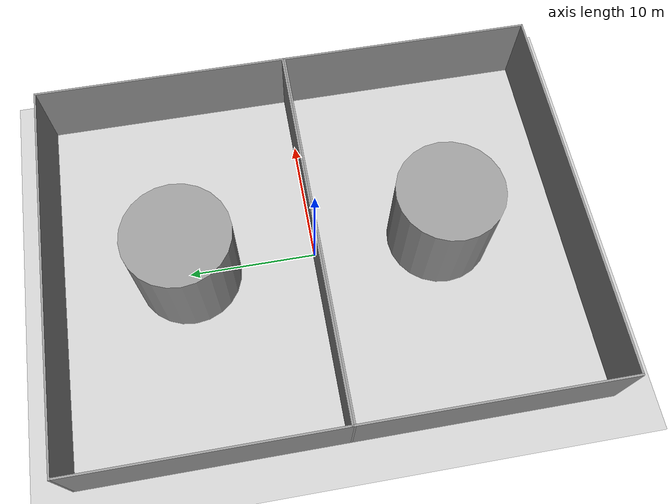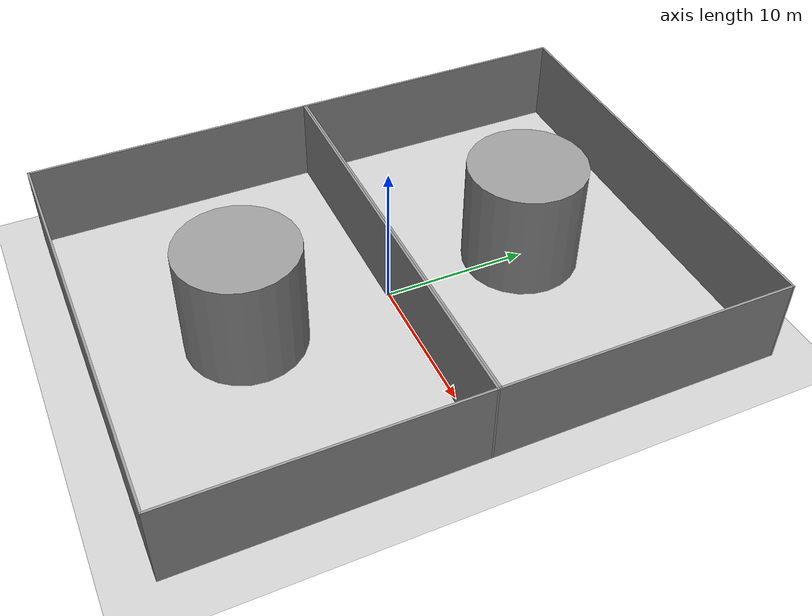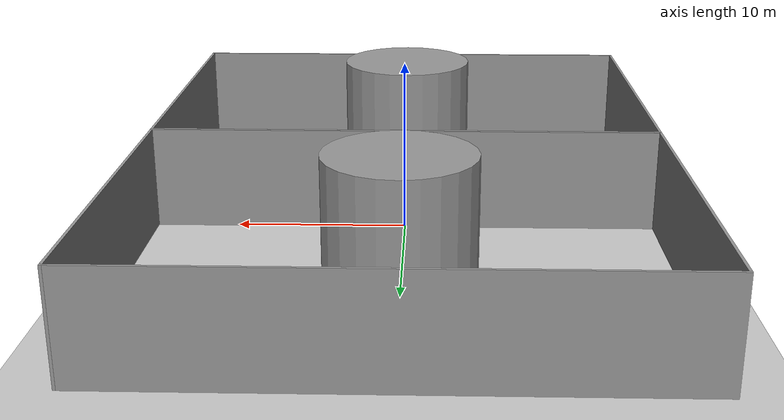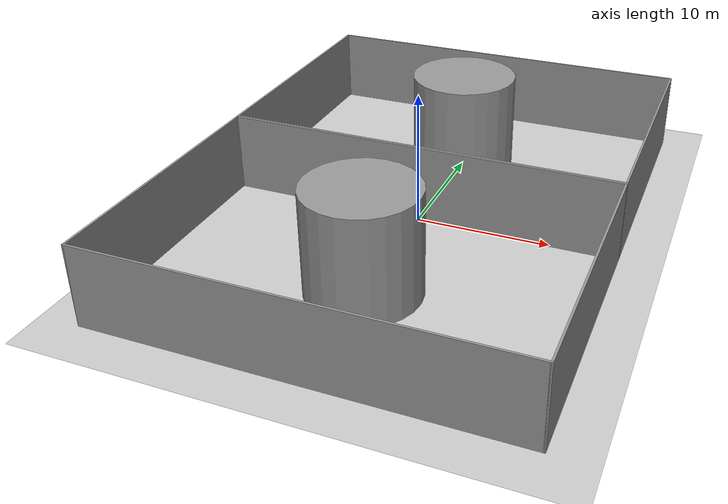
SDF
<sdf version="1.6">
 <world name="default">
  <light name="sun" type="directional">
   <pose>0 0 10 0 -0 0</pose>
   <diffuse>0.8 0.8 0.8 1</diffuse>
   <specular>0.2 0.2 0.2 1</specular>
   <attenuation>
    <range>1000</range>
    <constant>0.9</constant>
    <linear>0.01</linear>
    <quadratic>0.001</quadratic>
   </attenuation>
   <direction>-0.5 0.1 -0.9</direction>
  </light>
  <model name="ground_plane">
   <static>1</static>
   <link name="link">
    <collision name="collision">
     <geometry><plane><normal>0 0 1</normal><size>100 100</size></plane></geometry>
     <surface>
      <contact><collide_bitmask>65535</collide_bitmask></contact>
      <friction><ode><mu>100</mu><mu2>50</mu2></ode></friction>
     </surface>
    </collision>
    <visual name="visual">
     <cast_shadows>0</cast_shadows>
     <geometry><plane><normal>0 0 1</normal><size>100 100</size></plane></geometry>
     <material>
      <script><uri>file://media/materials/scripts/gazebo.material</uri><name>Gazebo/Grey</name></script>
     </material>
    </visual>
   </link>
  </model>
  <gravity>0 0 -9.8</gravity>
  <magnetic_field>6e-06 2.3e-05 -4.2e-05</magnetic_field>
  <atmosphere type="adiabatic"/>
  <physics name="default_physics" default="0" type="ode">
   <max_step_size>0.001</max_step_size>
   <real_time_factor>1</real_time_factor>
   <real_time_update_rate>1000</real_time_update_rate>
  </physics>
  <scene><ambient>0.4 0.4 0.4 1</ambient><background>0.7 0.7 0.7 1</background><shadows>1</shadows></scene>
  <spherical_coordinates>
   <surface_model>EARTH_WGS84</surface_model>
   <latitude_deg>0</latitude_deg>
   <longitude_deg>0</longitude_deg>
   <elevation>0</elevation>
   <heading_deg>0</heading_deg>
  </spherical_coordinates>
  <model name="simple_maze_2">
   <pose>0 10 0 0 -0 0</pose>
   <link name="Wall_10">
    <collision name="Wall_10_Collision">
     <geometry><box><size>30 0.15 6</size></box></geometry>
     <pose>0 0 3 0 -0 0</pose>
    </collision>
    <visual name="Wall_10_Visual">
     <pose>0 0 3 0 -0 0</pose>
     <geometry><box><size>30 0.15 6</size></box></geometry>
     <material>
      <script><uri>file://media/materials/scripts/gazebo.material</uri><name>Gazebo/Grey</name></script>
      <ambient>1 1 1 1</ambient>
     </material>
     <meta><layer>0</layer></meta>
    </visual>
    <pose>0 9.925 0 0 -0 3.14159</pose>
   </link>
   <link name="Wall_7">
    <collision name="Wall_7_Collision">
     <geometry><box><size>20 0.15 6</size></box></geometry>
     <pose>0 0 3 0 -0 0</pose>
    </collision>
    <visual name="Wall_7_Visual">
     <pose>0 0 3 0 -0 0</pose>
     <geometry><box><size>20 0.15 6</size></box></geometry>
     <material>
      <script><uri>file://media/materials/scripts/gazebo.material</uri><name>Gazebo/Grey</name></script>
      <ambient>1 1 1 1</ambient>
     </material>
     <meta><layer>0</layer></meta>
    </visual>
    <pose>-14.925 0 0 0 0 -1.5708</pose>
   </link>
   <link name="Wall_8">
    <collision name="Wall_8_Collision">
     <geometry><box><size>30 0.15 6</size></box></geometry>
     <pose>0 0 3 0 -0 0</pose>
    </collision>
    <visual name="Wall_8_Visual">
     <pose>0 0 3 0 -0 0</pose>
     <geometry><box><size>30 0.15 6</size></box></geometry>
     <material>
      <script><uri>file://media/materials/scripts/gazebo.material</uri><name>Gazebo/Grey</name></script>
      <ambient>1 1 1 1</ambient>
     </material>
     <meta><layer>0</layer></meta>
    </visual>
    <pose>0 -9.925 0 0 -0 0</pose>
   </link>
   <link name="Wall_9">
    <collision name="Wall_9_Collision">
     <geometry><box><size>20 0.15 6</size></box></geometry>
     <pose>0 0 3 0 -0 0</pose>
    </collision>
    <visual name="Wall_9_Visual">
     <pose>0 0 3 0 -0 0</pose>
     <geometry><box><size>20 0.15 6</size></box></geometry>
     <material>
      <script><uri>file://media/materials/scripts/gazebo.material</uri><name>Gazebo/Grey</name></script>
      <ambient>1 1 1 1</ambient>
     </material>
     <meta><layer>0</layer></meta>
    </visual>
    <pose>14.925 0 0 0 -0 1.5708</pose>
   </link>
   <static>1</static>
  </model>
  <model name="simple_maze_2_clone">
   <pose>0 -10 0 0 -0 0</pose>
   <link name="Wall_10">
    <collision name="Wall_10_Collision">
     <geometry><box><size>30 0.15 6</size></box></geometry>
     <pose>0 0 3 0 -0 0</pose>
    </collision>
    <visual name="Wall_10_Visual">
     <pose>0 0 3 0 -0 0</pose>
     <geometry><box><size>30 0.15 6</size></box></geometry>
     <material>
      <script><uri>file://media/materials/scripts/gazebo.material</uri><name>Gazebo/Grey</name></script>
      <ambient>1 1 1 1</ambient>
     </material>
     <meta><layer>0</layer></meta>
    </visual>
    <pose>0 9.925 0 0 -0 3.14159</pose>
   </link>
   <link name="Wall_7">
    <collision name="Wall_7_Collision">
     <geometry><box><size>20 0.15 6</size></box></geometry>
     <pose>0 0 3 0 -0 0</pose>
    </collision>
    <visual name="Wall_7_Visual">
     <pose>0 0 3 0 -0 0</pose>
     <geometry><box><size>20 0.15 6</size></box></geometry>
     <material>
      <script><uri>file://media/materials/scripts/gazebo.material</uri><name>Gazebo/Grey</name></script>
      <ambient>1 1 1 1</ambient>
     </material>
     <meta><layer>0</layer></meta>
    </visual>
    <pose>-14.925 0 0 0 0 -1.5708</pose>
   </link>
   <link name="Wall_8">
    <collision name="Wall_8_Collision">
     <geometry><box><size>30 0.15 6</size></box></geometry>
     <pose>0 0 3 0 -0 0</pose>
    </collision>
    <visual name="Wall_8_Visual">
     <pose>0 0 3 0 -0 0</pose>
     <geometry><box><size>30 0.15 6</size></box></geometry>
     <material>
      <script><uri>file://media/materials/scripts/gazebo.material</uri><name>Gazebo/Grey</name></script>
      <ambient>1 1 1 1</ambient>
     </material>
     <meta><layer>0</layer></meta>
    </visual>
    <pose>0 -9.925 0 0 -0 0</pose>
   </link>
   <link name="Wall_9">
    <collision name="Wall_9_Collision">
     <geometry><box><size>20 0.15 6</size></box></geometry>
     <pose>0 0 3 0 -0 0</pose>
    </collision>
    <visual name="Wall_9_Visual">
     <pose>0 0 3 0 -0 0</pose>
     <geometry><box><size>20 0.15 6</size></box></geometry>
     <material>
      <script><uri>file://media/materials/scripts/gazebo.material</uri><name>Gazebo/Grey</name></script>
      <ambient>1 1 1 1</ambient>
     </material>
     <meta><layer>0</layer></meta>
    </visual>
    <pose>14.925 0 0 0 -0 1.5708</pose>
   </link>
   <static>1</static>
  </model>
  <model name="unit_cylinder">
   <pose>0.082341 -10.0001 3.91436 1e-06 1e-06 0.007716</pose>
   <link name="link">
    <inertial>
     <mass>1</mass>
     <inertia><ixx>0.145833</ixx><ixy>0</ixy><ixz>0</ixz><iyy>0.145833</iyy><iyz>0</iyz><izz>0.125</izz></inertia>
    </inertial>
    <collision name="collision">
     <geometry><cylinder><radius>4.04964</radius><length>7.82872</length></cylinder></geometry>
    </collision>
    <visual name="visual">
     <geometry><cylinder><radius>4.04964</radius><length>7.82872</length></cylinder></geometry>
     <material>
      <script><name>Gazebo/Grey</name><uri>file://media/materials/scripts/gazebo.material</uri></script>
     </material>
    </visual>
   </link>
  </model>
  <model name="unit_cylinder_clone">
   <pose>1e-05 9.9999 3.91436 2e-06 1e-06 0.007722</pose>
   <link name="link">
    <inertial>
     <mass>1</mass>
     <inertia><ixx>0.145833</ixx><ixy>0</ixy><ixz>0</ixz><iyy>0.145833</iyy><iyz>0</iyz><izz>0.125</izz></inertia>
    </inertial>
    <collision name="collision">
     <geometry><cylinder><radius>4.04964</radius><length>7.82872</length></cylinder></geometry>
    </collision>
    <visual name="visual">
     <geometry><cylinder><radius>4.04964</radius><length>7.82872</length></cylinder></geometry>
     <material>
      <script><name>Gazebo/Grey</name><uri>file://media/materials/scripts/gazebo.material</uri></script>
     </material>
    </visual>
   </link>
  </model>
 </world>
</sdf>
